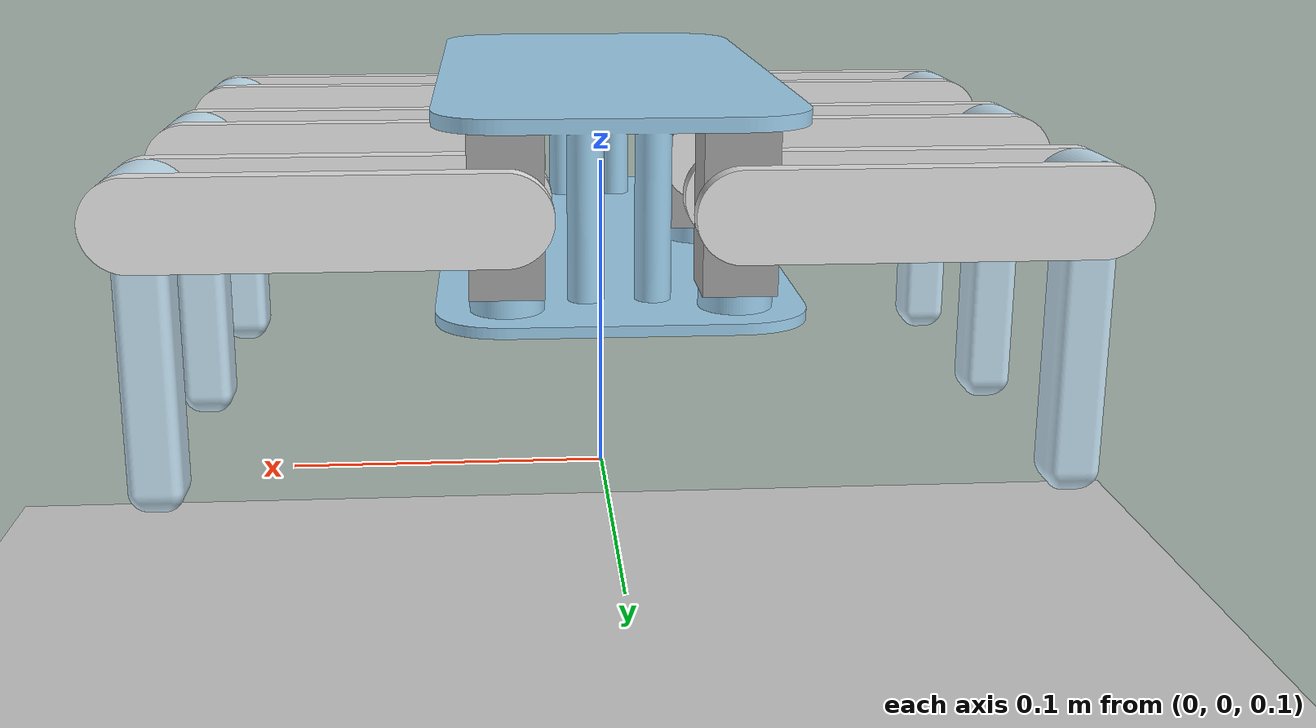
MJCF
<mujoco model="onshape">
  <compiler angle="radian"/>

  <asset>
    <mesh name="part_1" file="part_1.stl"/>
    <mesh name="part_2" file="part_2.stl"/>
    <mesh name="part_3" file="part_3.stl"/>
    <mesh name="part_4" file="part_4.stl"/>
  </asset>

    <option gravity="0 0 -9.81" timestep="0.001" iterations="5000">

   </option>

  <worldbody>

    <geom name="floor" type="plane" pos="0 0 0" size="10 10 1" rgba="0.8 0.8 0.8 1" friction="1.0 0.2 0.01" />

      <body name="main_body" pos="0 0 0.2">
      <freejoint name="root"/>
    <geom pos="-0.000171418 0.000240648 -0.0247441" quat="1 0 0 0" type="mesh" rgba="0.615686 0.811765 0.929412 1" mesh="part_1"/>
    <body name="part_2" pos="-0.0308041 0.0818578 -0.0197441" quat="0 -1 0 0">
      <inertial pos="0 0 -0.0225" mass="0.0225" diaginertia="4.54687e-06 4.54687e-06 1.5e-06"/>
      <joint name="1.1" pos="0 0 0" axis="0 0 1" range="-0.261799 0.261799" actuatorfrcrange="-10 10" damping="10"/>
      <geom pos="-0.0306327 -0.0816171 0.005" quat="0 1 0 0" type="mesh" rgba="0.647059 0.647059 0.647059 1" mesh="part_2"/>
      <body name="part_3" pos="0 -0.01 -0.0225" quat="0.707107 -0.707107 0 0">
        <inertial pos="-0.0474144 1.88489e-05 0.01" quat="0.500036 0.500036 0.499964 0.499964" mass="0.0449754" diaginertia="5.58559e-05 5.05429e-05 9.61719e-06"/>
        <joint name="2.1" pos="0 0 0" axis="0 0 1" range="-0.261799 0.261799" actuatorfrcrange="-10 10" damping="10"/>
        <geom pos="-0.128094 -0.02623 -0.0716171" quat="0.707107 -0.707107 0 0" type="mesh" rgba="0.917647 0.917647 0.917647 1" mesh="part_3"/>
        <body name="part_4" pos="-0.0949851 3.66516e-05 0.02" quat="1 0 0 0">
          <inertial pos="-5.73004e-09 -0.0276732 -0.01" quat="0.500021 0.500021 -0.499979 0.499979" mass="0.0309466" diaginertia="2.43319e-05 2.42547e-05 1.55077e-06"/>
          <joint name="3.4" pos="0 0 0" axis="0 0 1" range="-0.349066 0.349066" actuatorfrcrange="-10 10" damping="10"/>
          <geom pos="-0.128094 -0.02623 -0.0916171" quat="0.707107 -0.707107 0 0" type="mesh" rgba="0.768627 0.886275 0.952941 1" mesh="part_4"/>
        </body>
      </body>
    </body>
    <body name="part_2_2" pos="-0.0308041 0.000240648 -0.0197441" quat="0 -1 0 0">
      <inertial pos="0 0 -0.0225" mass="0.0225" diaginertia="4.54687e-06 4.54687e-06 1.5e-06"/>
      <joint name="1.2" pos="0 0 0" axis="0 0 1" range="-0.261799 0.261799" actuatorfrcrange="-10 10" damping="10"/>
      <geom pos="-0.0306327 0.0816171 -0.05" type="mesh" rgba="0.647059 0.647059 0.647059 1" mesh="part_2"/>
      <body name="part_3_2" pos="0 -0.01 -0.0225" quat="0.707107 -0.707107 0 0">
        <inertial pos="-0.0474144 1.88489e-05 0.01" quat="0.500036 0.500036 0.499964 0.499964" mass="0.0449754" diaginertia="5.58559e-05 5.05429e-05 9.61719e-06"/>
        <joint name="2.2" pos="0 0 0" axis="0 0 1" range="-0.261799 0.261799" actuatorfrcrange="-10 10" damping="10"/>
        <geom pos="-0.128094 -0.02623 -0.0716171" quat="0.707107 -0.707107 0 0" type="mesh" rgba="0.917647 0.917647 0.917647 1" mesh="part_3"/>
        <body name="part_4_2" pos="-0.0949851 3.66516e-05 0.02">
          <inertial pos="-5.73004e-09 -0.0276732 -0.01" quat="0.500021 0.500021 -0.499979 0.499979" mass="0.0309466" diaginertia="2.43319e-05 2.42547e-05 1.55077e-06"/>
          <joint name="3.6" pos="0 0 0" axis="0 0 1" range="-0.349066 0.349066" actuatorfrcrange="-10 10" damping="10"/>
          <geom pos="-0.128094 -0.02623 -0.0916171" quat="0.707107 -0.707107 0 0" type="mesh" rgba="0.768627 0.886275 0.952941 1" mesh="part_4"/>
        </body>
      </body>
    </body>
    <body name="part_2_3" pos="-0.0308041 -0.0813765 -0.0197441" quat="0 1 0 0">
      <inertial pos="0 0 -0.0225" mass="0.0225" diaginertia="4.54687e-06 4.54687e-06 1.5e-06"/>
      <joint name="1.3" pos="0 0 0" axis="0 0 1" range="-0.261799 0.261799" actuatorfrcrange="-10 10" damping="10"/>
      <geom pos="-0.0306327 0.0816171 -0.05" type="mesh" rgba="0.647059 0.647059 0.647059 1" mesh="part_2"/>
      <body name="part_3_3" pos="0 -0.01 -0.0225" quat="0.707107 -0.707107 0 0">
        <inertial pos="-0.0474144 1.88489e-05 0.01" quat="0.500036 0.500036 0.499964 0.499964" mass="0.0449754" diaginertia="5.58559e-05 5.05429e-05 9.61719e-06"/>
        <joint name="2.3" pos="0 0 0" axis="0 0 1" range="-0.261799 0.261799" actuatorfrcrange="-10 10" damping="10"/>
        <geom pos="-0.128094 -0.02623 -0.0716171" quat="0.707107 -0.707107 0 0" type="mesh" rgba="0.917647 0.917647 0.917647 1" mesh="part_3"/>
        <body name="part_4_3" pos="-0.0949851 3.66516e-05 0.02">
          <inertial pos="-5.73004e-09 -0.0276732 -0.01" quat="0.500021 0.500021 -0.499979 0.499979" mass="0.0309466" diaginertia="2.43319e-05 2.42547e-05 1.55077e-06"/>
          <joint name="3.5" pos="0 0 0" axis="0 0 1" range="-0.349066 0.349066" actuatorfrcrange="-10 10" damping="10"/>
          <geom pos="-0.128094 -0.02623 -0.0916171" quat="0.707107 -0.707107 0 0" type="mesh" rgba="0.768627 0.886275 0.952941 1" mesh="part_4"/>
        </body>
      </body>
    </body>
    <body name="part_2_4" pos="0.0304613 -0.0813765 -0.0197441" quat="0 1 0 0">
      <inertial pos="0 0 -0.0225" mass="0.0225" diaginertia="4.54687e-06 4.54687e-06 1.5e-06"/>
      <joint name="1.4" pos="0 0 0" axis="0 0 1" range="-0.261799 0.261799" actuatorfrcrange="-10 10" damping="10"/>
      <geom pos="-0.0306327 0.0816171 -0.05" type="mesh" rgba="0.647059 0.647059 0.647059 1" mesh="part_2"/>
      <body name="part_3_4" pos="0 0.01 -0.0225" quat="0.707107 0.707107 0 0">
        <inertial pos="0.0475707 1.78026e-05 0.01" quat="0.499964 0.499964 0.500036 0.500036" mass="0.0449754" diaginertia="5.58559e-05 5.05429e-05 9.61719e-06"/>
        <joint name="2.6" pos="0 0 0" axis="0 0 1" range="-0.261799 0.261799" actuatorfrcrange="-10 10" damping="10"/>
        <geom pos="-0.0331089 0.0262667 0.0916171" quat="0.707107 0.707107 0 0" type="mesh" rgba="0.917647 0.917647 0.917647 1" mesh="part_3"/>
        <body name="part_4_4" pos="0.0949851 3.66516e-05 0" quat="0 1 0 0">
          <inertial pos="-5.73004e-09 -0.0276732 -0.01" quat="0.500021 0.500021 -0.499979 0.499979" mass="0.0309466" diaginertia="2.43319e-05 2.42547e-05 1.55077e-06"/>
          <joint name="3.1" pos="0 0 0" axis="0 0 1" range="-0.349066 0.349066" actuatorfrcrange="-10 10" damping="10"/>
          <geom pos="-0.128094 -0.02623 -0.0916171" quat="0.707107 -0.707107 0 0" type="mesh" rgba="0.768627 0.886275 0.952941 1" mesh="part_4"/>
        </body>
      </body>
    </body>
    <body name="part_2_5" pos="0.0304613 0.000240648 -0.0197441" quat="0 1 0 0">
      <inertial pos="0 0 -0.0225" mass="0.0225" diaginertia="4.54687e-06 4.54687e-06 1.5e-06"/>
      <joint name="1.5" pos="0 0 0" axis="0 0 1" range="-0.261799 0.261799" actuatorfrcrange="-10 10" damping="10"/>
      <geom pos="-0.0306327 0.0816171 -0.05" type="mesh" rgba="0.647059 0.647059 0.647059 1" mesh="part_2"/>
      <body name="part_3_5" pos="0 0.01 -0.0225" quat="0 0 -0.707107 0.707107">
        <inertial pos="-0.0474144 -1.88489e-05 0.01" quat="0.499964 0.499964 0.500036 0.500036" mass="0.0449754" diaginertia="5.58559e-05 5.05429e-05 9.61719e-06"/>
        <joint name="2.4" pos="0 0 0" axis="0 0 1" range="-0.261799 0.261799" actuatorfrcrange="-10 10" damping="10"/>
        <geom pos="-0.128094 0.02623 0.0916171" quat="0.707107 0.707107 0 0" type="mesh" rgba="0.917647 0.917647 0.917647 1" mesh="part_3"/>
        <body name="part_4_5" pos="-0.0949851 -3.66516e-05 0" quat="0 0 1 0">
          <inertial pos="-5.73004e-09 -0.0276732 -0.01" quat="0.500021 0.500021 -0.499979 0.499979" mass="0.0309466" diaginertia="2.43319e-05 2.42547e-05 1.55077e-06"/>
          <joint name="3.2" pos="0 0 0" axis="0 0 1" range="-0.349066 0.349066" actuatorfrcrange="-10 10" damping="10"/>
          <geom pos="-0.128094 -0.02623 -0.0916171" quat="0.707107 -0.707107 0 0" type="mesh" rgba="0.768627 0.886275 0.952941 1" mesh="part_4"/>
        </body>
      </body>
    </body>
    <body name="part_2_6" pos="0.0304613 0.0818578 -0.0197441" quat="0 1 0 0">
      <inertial pos="0 0 -0.0225" mass="0.0225" diaginertia="4.54687e-06 4.54687e-06 1.5e-06"/>
      <joint name="1.6" pos="0 0 0" axis="0 0 1" range="-0.261799 0.261799" actuatorfrcrange="-10 10" damping="10"/>
      <geom pos="-0.0306327 0.0816171 -0.05" type="mesh" rgba="0.647059 0.647059 0.647059 1" mesh="part_2"/>
      <body name="part_3_6" pos="0 0.01 -0.0225" quat="0.707107 0.707107 0 0">
        <inertial pos="0.0475707 1.78026e-05 0.01" quat="0.499964 0.499964 0.500036 0.500036" mass="0.0449754" diaginertia="5.58559e-05 5.05429e-05 9.61719e-06"/>
        <joint name="2.5" pos="0 0 0" axis="0 0 1" range="-0.261799 0.261799" actuatorfrcrange="-10 10" damping="10"/>
        <geom pos="-0.0331089 0.0262667 0.0916171" quat="0.707107 0.707107 0 0" type="mesh" rgba="0.917647 0.917647 0.917647 1" mesh="part_3"/>
        <body name="part_4_6" pos="0.0949851 3.66516e-05 0" quat="0 1 0 0">
          <inertial pos="-5.73004e-09 -0.0276732 -0.01" quat="0.500021 0.500021 -0.499979 0.499979" mass="0.0309466" diaginertia="2.43319e-05 2.42547e-05 1.55077e-06"/>
          <joint name="3.3" pos="0 0 0" axis="0 0 1" range="-0.349066 0.349066" actuatorfrcrange="-10 10" damping="10"/>
          <geom pos="-0.128094 -0.02623 -0.0916171" quat="0.707107 -0.707107 0 0" type="mesh" rgba="0.768627 0.886275 0.952941 1" mesh="part_4"/>
        </body>
      </body>
    </body>
    </body>
  </worldbody>

<actuator>
    <!-- Actuators for joints 1.1 - 1.6 -->
    <position joint="1.1" ctrllimited="true" ctrlrange="-0.523599 0.523599" kp="100" timeconst="0.2"/>
    <position joint="1.2" ctrllimited="true" ctrlrange="-0.523599 0.523599" kp="100" timeconst="0.2"/>
    <position joint="1.3" ctrllimited="true" ctrlrange="-0.523599 0.523599" kp="100" timeconst="0.2"/>
    <position joint="1.4" ctrllimited="true" ctrlrange="-0.523599 0.523599" kp="100" timeconst="0.2"/>
    <position joint="1.5" ctrllimited="true" ctrlrange="-0.523599 0.523599" kp="100" timeconst="0.2"/>
    <position joint="1.6" ctrllimited="true" ctrlrange="-0.523599 0.523599" kp="100" timeconst="0.2"/>

    <!-- Actuators for joints 2.1 - 2.6 -->
    <position joint="2.1" ctrllimited="true" ctrlrange="-0.523599 0.523599" kp="100" timeconst="0.2"/>
    <position joint="2.2" ctrllimited="true" ctrlrange="-0.523599 0.523599" kp="100" timeconst="0.2"/>
    <position joint="2.3" ctrllimited="true" ctrlrange="-0.523599 0.523599" kp="100" timeconst="0.2"/>
    <position joint="2.4" ctrllimited="true" ctrlrange="-0.523599 0.523599" kp="100" timeconst="0.2"/>
    <position joint="2.5" ctrllimited="true" ctrlrange="-0.523599 0.523599" kp="100" timeconst="0.2"/>
    <position joint="2.6" ctrllimited="true" ctrlrange="-0.523599 0.523599" kp="100" timeconst="0.2"/>

    <!-- Actuators for joints 3.1 - 3.6 -->
    <position joint="3.1" ctrllimited="true" ctrlrange="-0.523599 0.523599" kp="100" timeconst="0.2"/>
    <position joint="3.2" ctrllimited="true" ctrlrange="-0.523599 0.523599" kp="100" timeconst="0.2"/>
    <position joint="3.3" ctrllimited="true" ctrlrange="-0.523599 0.523599" kp="100" timeconst="0.2"/>
    <position joint="3.4" ctrllimited="true" ctrlrange="-0.523599 0.523599" kp="100" timeconst="0.2"/>
    <position joint="3.5" ctrllimited="true" ctrlrange="-0.523599 0.523599" kp="100" timeconst="0.2"/>
    <position joint="3.6" ctrllimited="true" ctrlrange="-0.523599 0.523599" kp="100" timeconst="0.2"/>
</actuator>
</mujoco>
